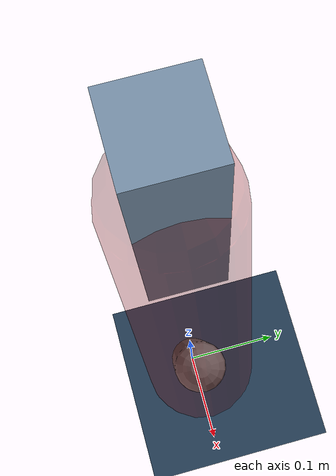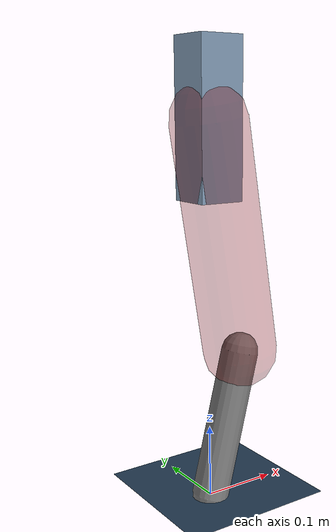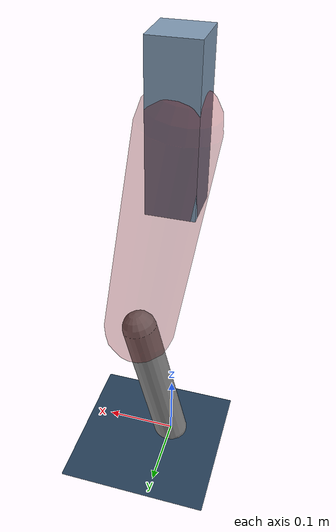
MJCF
<mujoco model="Hopper2D">
	<compiler inertiafromgeom="true" angle="radian" />
	<option timestep="0.001" integrator="implicit" cone="elliptic" solver="Newton" tolerance="1e-10" />

	<default>
		<geom contype="1" conaffinity="1" condim="3" friction="2 0.005 0.0001" solref="0.005 1" />
		<joint limited="true" damping="0.1" />
	</default>

	<asset>
		<texture name="skybox" type="skybox" builtin="gradient" rgb1=".4 .6 .8" rgb2="0 0 0" width="800" height="800" />
		<texture name="grid" type="2d" builtin="checker" rgb1=".1 .2 .3" rgb2=".2 .3 .4" width="300" height="300" mark="edge" markrgb=".2 .3 .4" />
		<material name="ground" texture="grid" texrepeat="1 1" texuniform="true" reflectance="0.1" />
		<material name="leg" rgba="0.5 0.6 0.7 1" />
	</asset>

	<worldbody>

		<geom name="floor" type="plane" size="5 5 0.25" material="ground" />

		<light directional="false" diffuse="0.8 0.8 0.8" specular="0.3 0.3 0.3" pos="0 0 2" dir="0 0 -1" />
		<light mode="targetbodycom" target="base" directional="false" diffuse="0.8 0.8 0.8" specular="0.3 0.3 0.3" pos="0 0 2" dir="0 0 -1" />

		<camera name="fixed" pos="0 -2 1" xyaxes="1 0 0 0 0 1" />
		<camera name="tracking" mode="trackcom" pos="0 -3 1" />

		<body name="root" pos="0 0 0.5051299053740512">
			<joint name="slide_x" type="slide" axis="1 0 0" range="-100 100" />
			<joint name="slide_z" type="slide" axis="0 0 1" range="0 10" />

			<body name="base" pos="0 0 0">
				<geom name="torso" type="box" size="0.03 0.03 0.1" mass="3.035" material="leg" />

				<body name="link1" pos="0 0 0" euler="0 1.4109147848692518 0">
					<joint type="hinge" axis="0 -1 0" pos="0 0 0" name="hinge1" limited="true" range="-3.14 3.14" stiffness="0" damping="0.1" />
					<geom name="thigh" type="capsule" fromto="0 0 0 0.31025361761675374 0 0" size="0.05" rgba="0.5 0 0 0.3" mass="1.016584767565235" />

					<body name="link2" pos="0.31025361761675374 0 0" euler="0 0.403366054467502 0">
						<joint type="hinge" axis="0 -1 0" pos="0 0 0" name="hinge2" limited="true" range="-3.14 3.14" stiffness="0" damping="0.1" />
						<geom name="shank" type="capsule" fromto="0 0 0 0.20487628775729752 0 0" size="0.025" mass="0.40500103020583805" />

					</body>
				</body>
			</body>
		</body>
	</worldbody>

	<actuator>
		<motor name="torque1" joint="hinge1" ctrlrange="-167.23029948354295 167.23029948354295" ctrllimited="true" gear="1" />
		<motor name="torque2" joint="hinge2" ctrlrange="-117.83115608031358 117.83115608031358" ctrllimited="true" gear="1" />
	</actuator>
</mujoco>
